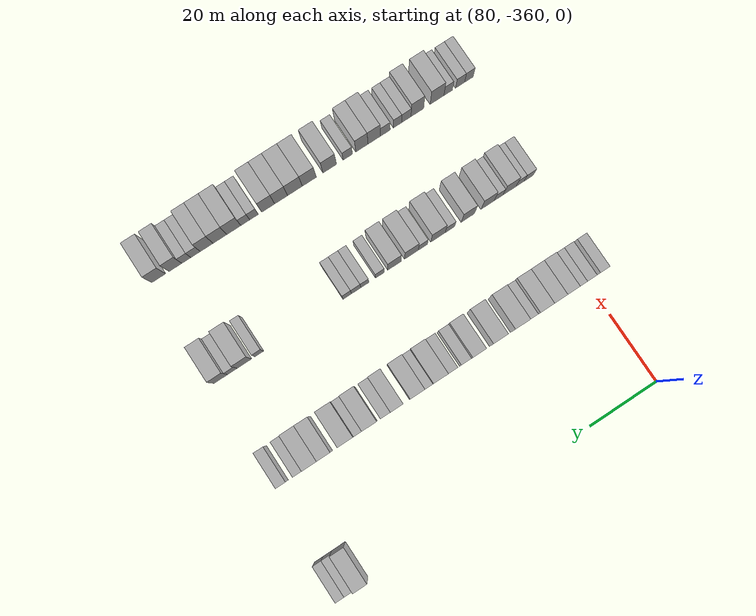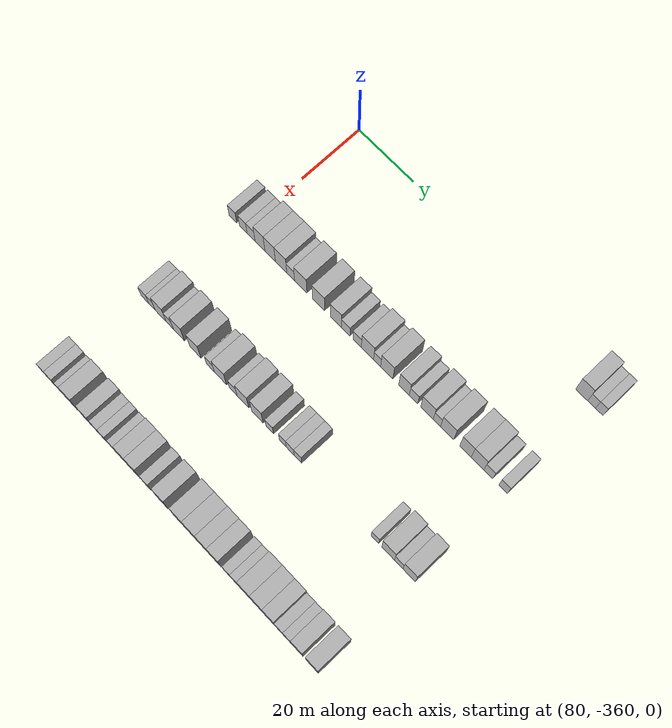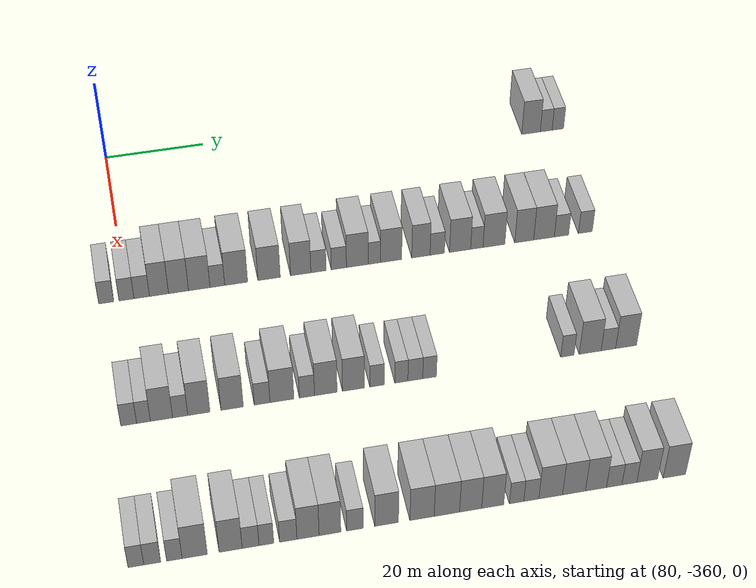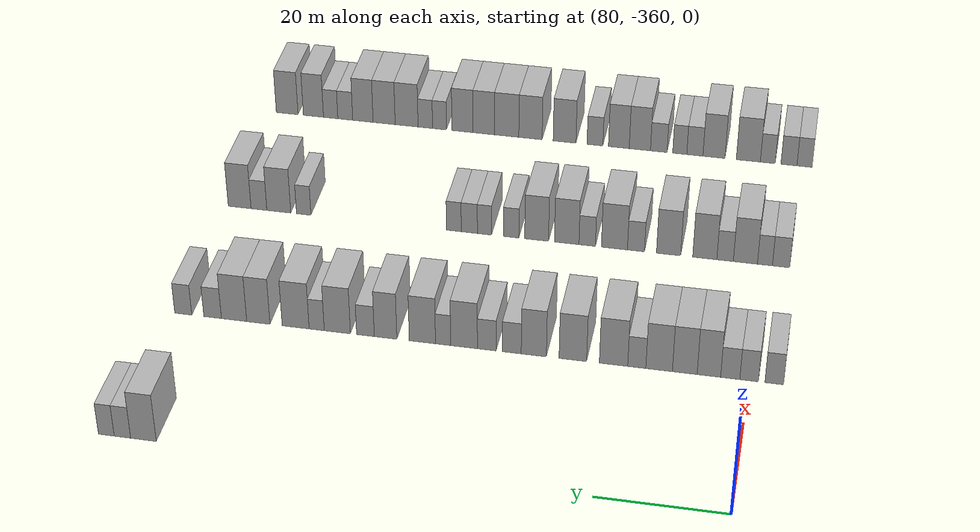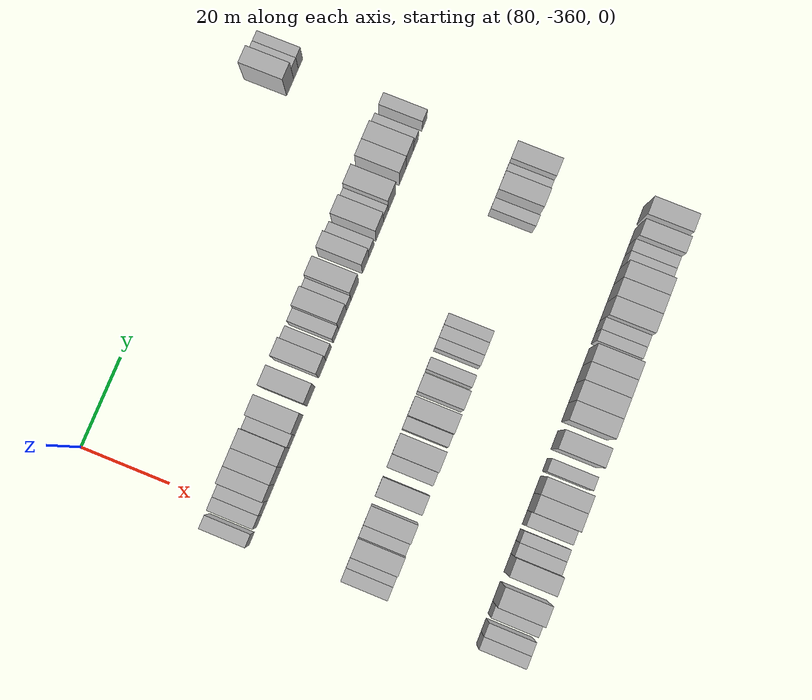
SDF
<sdf version="1.6">
 <world name="default">
  <model name="building_501">
   <static>1</static>
   <pose>85.0000 -272.5114 0 0.000000 0.000000 0.000000</pose>
   <link name="link">
    <pose>0 0 4.50 0 0 0</pose>
    <collision name="collision"><geometry><box><size>10.0000 3.9751 9.0000</size></box></geometry></collision>
    <visual name="visual">
     <cast_shadows>0</cast_shadows>
     <geometry><box><size>10.0000 3.9751 9.0000</size></box></geometry>
     <material>
      <script>
       <uri>model://HANNAS_wall/materials/scripts</uri>
       <uri>model://HANNAS_wall/materials/textures</uri>
       <name>vrc/HANNAS_wall</name>
      </script>
     </material>
    </visual>
   </link>
  </model>
  <model name="building_502">
   <static>1</static>
   <pose>85.0000 -269.2441 0 0.000000 0.000000 0.000000</pose>
   <link name="link">
    <pose>0 0 3.00 0 0 0</pose>
    <collision name="collision"><geometry><box><size>10.0000 2.5595 6.0000</size></box></geometry></collision>
    <visual name="visual">
     <cast_shadows>0</cast_shadows>
     <geometry><box><size>10.0000 2.5595 6.0000</size></box></geometry>
     <material>
      <script>
       <uri>model://HANNAS_wall/materials/scripts</uri>
       <uri>model://HANNAS_wall/materials/textures</uri>
       <name>vrc/HANNAS_wall</name>
      </script>
     </material>
    </visual>
   </link>
  </model>
  <model name="building_503">
   <static>1</static>
   <pose>85.0000 -266.7356 0 0.000000 0.000000 0.000000</pose>
   <link name="link">
    <pose>0 0 3.00 0 0 0</pose>
    <collision name="collision"><geometry><box><size>10.0000 2.4575 6.0000</size></box></geometry></collision>
    <visual name="visual">
     <cast_shadows>0</cast_shadows>
     <geometry><box><size>10.0000 2.4575 6.0000</size></box></geometry>
     <material>
      <script>
       <uri>model://HANNAS_wall/materials/scripts</uri>
       <uri>model://HANNAS_wall/materials/textures</uri>
       <name>vrc/HANNAS_wall</name>
      </script>
     </material>
    </visual>
   </link>
  </model>
  <model name="building_700">
   <static>1</static>
   <pose>115.0000 -363.8164 0 0.000000 0.000000 0.000000</pose>
   <link name="link">
    <pose>0 0 3.00 0 0 0</pose>
    <collision name="collision"><geometry><box><size>10.0000 2.8569 6.0000</size></box></geometry></collision>
    <visual name="visual">
     <cast_shadows>0</cast_shadows>
     <geometry><box><size>10.0000 2.8569 6.0000</size></box></geometry>
     <material>
      <script>
       <uri>model://HANNAS_wall/materials/scripts</uri>
       <uri>model://HANNAS_wall/materials/textures</uri>
       <name>vrc/HANNAS_wall</name>
      </script>
     </material>
    </visual>
   </link>
  </model>
  <model name="building_701">
   <static>1</static>
   <pose>115.0000 -359.9608 0 0.000000 0.000000 0.000000</pose>
   <link name="link">
    <pose>0 0 3.00 0 0 0</pose>
    <collision name="collision"><geometry><box><size>10.0000 2.8542 6.0000</size></box></geometry></collision>
    <visual name="visual">
     <cast_shadows>0</cast_shadows>
     <geometry><box><size>10.0000 2.8542 6.0000</size></box></geometry>
     <material>
      <script>
       <uri>model://HANNAS_wall/materials/scripts</uri>
       <uri>model://HANNAS_wall/materials/textures</uri>
       <name>vrc/HANNAS_wall</name>
      </script>
     </material>
    </visual>
   </link>
  </model>
  <model name="building_702">
   <static>1</static>
   <pose>115.0000 -357.0542 0 0.000000 0.000000 0.000000</pose>
   <link name="link">
    <pose>0 0 3.00 0 0 0</pose>
    <collision name="collision"><geometry><box><size>10.0000 2.9592 6.0000</size></box></geometry></collision>
    <visual name="visual">
     <cast_shadows>0</cast_shadows>
     <geometry><box><size>10.0000 2.9592 6.0000</size></box></geometry>
     <material>
      <script>
       <uri>model://HANNAS_wall/materials/scripts</uri>
       <uri>model://HANNAS_wall/materials/textures</uri>
       <name>vrc/HANNAS_wall</name>
      </script>
     </material>
    </visual>
   </link>
  </model>
  <model name="building_703">
   <static>1</static>
   <pose>115.0000 -353.7580 0 0.000000 0.000000 0.000000</pose>
   <link name="link">
    <pose>0 0 4.50 0 0 0</pose>
    <collision name="collision"><geometry><box><size>10.0000 3.6331 9.0000</size></box></geometry></collision>
    <visual name="visual">
     <cast_shadows>0</cast_shadows>
     <geometry><box><size>10.0000 3.6331 9.0000</size></box></geometry>
     <material>
      <script>
       <uri>model://HANNAS_wall/materials/scripts</uri>
       <uri>model://HANNAS_wall/materials/textures</uri>
       <name>vrc/HANNAS_wall</name>
      </script>
     </material>
    </visual>
   </link>
  </model>
  <model name="building_704">
   <static>1</static>
   <pose>115.0000 -350.0227 0 0.000000 0.000000 0.000000</pose>
   <link name="link">
    <pose>0 0 4.50 0 0 0</pose>
    <collision name="collision"><geometry><box><size>10.0000 3.8375 9.0000</size></box></geometry></collision>
    <visual name="visual">
     <cast_shadows>0</cast_shadows>
     <geometry><box><size>10.0000 3.8375 9.0000</size></box></geometry>
     <material>
      <script>
       <uri>model://HANNAS_wall/materials/scripts</uri>
       <uri>model://HANNAS_wall/materials/textures</uri>
       <name>vrc/HANNAS_wall</name>
      </script>
     </material>
    </visual>
   </link>
  </model>
  <model name="building_705">
   <static>1</static>
   <pose>115.0000 -346.0353 0 0.000000 0.000000 0.000000</pose>
   <link name="link">
    <pose>0 0 4.50 0 0 0</pose>
    <collision name="collision"><geometry><box><size>10.0000 4.1374 9.0000</size></box></geometry></collision>
    <visual name="visual">
     <cast_shadows>0</cast_shadows>
     <geometry><box><size>10.0000 4.1374 9.0000</size></box></geometry>
     <material>
      <script>
       <uri>model://HANNAS_wall/materials/scripts</uri>
       <uri>model://HANNAS_wall/materials/textures</uri>
       <name>vrc/HANNAS_wall</name>
      </script>
     </material>
    </visual>
   </link>
  </model>
  <model name="building_706">
   <static>1</static>
   <pose>115.0000 -342.5532 0 0.000000 0.000000 0.000000</pose>
   <link name="link">
    <pose>0 0 3.00 0 0 0</pose>
    <collision name="collision"><geometry><box><size>10.0000 2.8268 6.0000</size></box></geometry></collision>
    <visual name="visual">
     <cast_shadows>0</cast_shadows>
     <geometry><box><size>10.0000 2.8268 6.0000</size></box></geometry>
     <material>
      <script>
       <uri>model://HANNAS_wall/materials/scripts</uri>
       <uri>model://HANNAS_wall/materials/textures</uri>
       <name>vrc/HANNAS_wall</name>
      </script>
     </material>
    </visual>
   </link>
  </model>
  <model name="building_707">
   <static>1</static>
   <pose>115.0000 -338.9180 0 0.000000 0.000000 0.000000</pose>
   <link name="link">
    <pose>0 0 4.50 0 0 0</pose>
    <collision name="collision"><geometry><box><size>10.0000 4.4434 9.0000</size></box></geometry></collision>
    <visual name="visual">
     <cast_shadows>0</cast_shadows>
     <geometry><box><size>10.0000 4.4434 9.0000</size></box></geometry>
     <material>
      <script>
       <uri>model://HANNAS_wall/materials/scripts</uri>
       <uri>model://HANNAS_wall/materials/textures</uri>
       <name>vrc/HANNAS_wall</name>
      </script>
     </material>
    </visual>
   </link>
  </model>
  <model name="building_708">
   <static>1</static>
   <pose>115.0000 -332.5225 0 0.000000 0.000000 0.000000</pose>
   <link name="link">
    <pose>0 0 4.50 0 0 0</pose>
    <collision name="collision"><geometry><box><size>10.0000 4.3476 9.0000</size></box></geometry></collision>
    <visual name="visual">
     <cast_shadows>0</cast_shadows>
     <geometry><box><size>10.0000 4.3476 9.0000</size></box></geometry>
     <material>
      <script>
       <uri>model://HANNAS_wall/materials/scripts</uri>
       <uri>model://HANNAS_wall/materials/textures</uri>
       <name>vrc/HANNAS_wall</name>
      </script>
     </material>
    </visual>
   </link>
  </model>
  <model name="building_709">
   <static>1</static>
   <pose>115.0000 -326.3558 0 0.000000 0.000000 0.000000</pose>
   <link name="link">
    <pose>0 0 4.50 0 0 0</pose>
    <collision name="collision"><geometry><box><size>10.0000 3.9858 9.0000</size></box></geometry></collision>
    <visual name="visual">
     <cast_shadows>0</cast_shadows>
     <geometry><box><size>10.0000 3.9858 9.0000</size></box></geometry>
     <material>
      <script>
       <uri>model://HANNAS_wall/materials/scripts</uri>
       <uri>model://HANNAS_wall/materials/textures</uri>
       <name>vrc/HANNAS_wall</name>
      </script>
     </material>
    </visual>
   </link>
  </model>
  <model name="building_710">
   <static>1</static>
   <pose>115.0000 -322.8643 0 0.000000 0.000000 0.000000</pose>
   <link name="link">
    <pose>0 0 3.00 0 0 0</pose>
    <collision name="collision"><geometry><box><size>10.0000 2.9972 6.0000</size></box></geometry></collision>
    <visual name="visual">
     <cast_shadows>0</cast_shadows>
     <geometry><box><size>10.0000 2.9972 6.0000</size></box></geometry>
     <material>
      <script>
       <uri>model://HANNAS_wall/materials/scripts</uri>
       <uri>model://HANNAS_wall/materials/textures</uri>
       <name>vrc/HANNAS_wall</name>
      </script>
     </material>
    </visual>
   </link>
  </model>
  <model name="building_711">
   <static>1</static>
   <pose>115.0000 -318.8786 0 0.000000 0.000000 0.000000</pose>
   <link name="link">
    <pose>0 0 3.00 0 0 0</pose>
    <collision name="collision"><geometry><box><size>10.0000 2.9743 6.0000</size></box></geometry></collision>
    <visual name="visual">
     <cast_shadows>0</cast_shadows>
     <geometry><box><size>10.0000 2.9743 6.0000</size></box></geometry>
     <material>
      <script>
       <uri>model://HANNAS_wall/materials/scripts</uri>
       <uri>model://HANNAS_wall/materials/textures</uri>
       <name>vrc/HANNAS_wall</name>
      </script>
     </material>
    </visual>
   </link>
  </model>
  <model name="building_712">
   <static>1</static>
   <pose>115.0000 -315.2527 0 0.000000 0.000000 0.000000</pose>
   <link name="link">
    <pose>0 0 4.50 0 0 0</pose>
    <collision name="collision"><geometry><box><size>10.0000 4.2775 9.0000</size></box></geometry></collision>
    <visual name="visual">
     <cast_shadows>0</cast_shadows>
     <geometry><box><size>10.0000 4.2775 9.0000</size></box></geometry>
     <material>
      <script>
       <uri>model://HANNAS_wall/materials/scripts</uri>
       <uri>model://HANNAS_wall/materials/textures</uri>
       <name>vrc/HANNAS_wall</name>
      </script>
     </material>
    </visual>
   </link>
  </model>
  <model name="building_713">
   <static>1</static>
   <pose>115.0000 -311.8958 0 0.000000 0.000000 0.000000</pose>
   <link name="link">
    <pose>0 0 3.00 0 0 0</pose>
    <collision name="collision"><geometry><box><size>10.0000 2.4363 6.0000</size></box></geometry></collision>
    <visual name="visual">
     <cast_shadows>0</cast_shadows>
     <geometry><box><size>10.0000 2.4363 6.0000</size></box></geometry>
     <material>
      <script>
       <uri>model://HANNAS_wall/materials/scripts</uri>
       <uri>model://HANNAS_wall/materials/textures</uri>
       <name>vrc/HANNAS_wall</name>
      </script>
     </material>
    </visual>
   </link>
  </model>
  <model name="building_714">
   <static>1</static>
   <pose>115.0000 -308.5693 0 0.000000 0.000000 0.000000</pose>
   <link name="link">
    <pose>0 0 4.50 0 0 0</pose>
    <collision name="collision"><geometry><box><size>10.0000 4.2165 9.0000</size></box></geometry></collision>
    <visual name="visual">
     <cast_shadows>0</cast_shadows>
     <geometry><box><size>10.0000 4.2165 9.0000</size></box></geometry>
     <material>
      <script>
       <uri>model://HANNAS_wall/materials/scripts</uri>
       <uri>model://HANNAS_wall/materials/textures</uri>
       <name>vrc/HANNAS_wall</name>
      </script>
     </material>
    </visual>
   </link>
  </model>
  <model name="building_715">
   <static>1</static>
   <pose>115.0000 -302.6362 0 0.000000 0.000000 0.000000</pose>
   <link name="link">
    <pose>0 0 4.50 0 0 0</pose>
    <collision name="collision"><geometry><box><size>10.0000 3.6497 9.0000</size></box></geometry></collision>
    <visual name="visual">
     <cast_shadows>0</cast_shadows>
     <geometry><box><size>10.0000 3.6497 9.0000</size></box></geometry>
     <material>
      <script>
       <uri>model://HANNAS_wall/materials/scripts</uri>
       <uri>model://HANNAS_wall/materials/textures</uri>
       <name>vrc/HANNAS_wall</name>
      </script>
     </material>
    </visual>
   </link>
  </model>
  <model name="building_716">
   <static>1</static>
   <pose>115.0000 -299.3735 0 0.000000 0.000000 0.000000</pose>
   <link name="link">
    <pose>0 0 3.00 0 0 0</pose>
    <collision name="collision"><geometry><box><size>10.0000 2.8758 6.0000</size></box></geometry></collision>
    <visual name="visual">
     <cast_shadows>0</cast_shadows>
     <geometry><box><size>10.0000 2.8758 6.0000</size></box></geometry>
     <material>
      <script>
       <uri>model://HANNAS_wall/materials/scripts</uri>
       <uri>model://HANNAS_wall/materials/textures</uri>
       <name>vrc/HANNAS_wall</name>
      </script>
     </material>
    </visual>
   </link>
  </model>
  <model name="building_717">
   <static>1</static>
   <pose>115.0000 -294.8065 0 0.000000 0.000000 0.000000</pose>
   <link name="link">
    <pose>0 0 4.50 0 0 0</pose>
    <collision name="collision"><geometry><box><size>10.0000 4.2581 9.0000</size></box></geometry></collision>
    <visual name="visual">
     <cast_shadows>0</cast_shadows>
     <geometry><box><size>10.0000 4.2581 9.0000</size></box></geometry>
     <material>
      <script>
       <uri>model://HANNAS_wall/materials/scripts</uri>
       <uri>model://HANNAS_wall/materials/textures</uri>
       <name>vrc/HANNAS_wall</name>
      </script>
     </material>
    </visual>
   </link>
  </model>
  <model name="building_718">
   <static>1</static>
   <pose>115.0000 -291.4422 0 0.000000 0.000000 0.000000</pose>
   <link name="link">
    <pose>0 0 3.00 0 0 0</pose>
    <collision name="collision"><geometry><box><size>10.0000 2.4704 6.0000</size></box></geometry></collision>
    <visual name="visual">
     <cast_shadows>0</cast_shadows>
     <geometry><box><size>10.0000 2.4704 6.0000</size></box></geometry>
     <material>
      <script>
       <uri>model://HANNAS_wall/materials/scripts</uri>
       <uri>model://HANNAS_wall/materials/textures</uri>
       <name>vrc/HANNAS_wall</name>
      </script>
     </material>
    </visual>
   </link>
  </model>
  <model name="building_719">
   <static>1</static>
   <pose>115.0000 -287.9984 0 0.000000 0.000000 0.000000</pose>
   <link name="link">
    <pose>0 0 4.50 0 0 0</pose>
    <collision name="collision"><geometry><box><size>10.0000 4.4172 9.0000</size></box></geometry></collision>
    <visual name="visual">
     <cast_shadows>0</cast_shadows>
     <geometry><box><size>10.0000 4.4172 9.0000</size></box></geometry>
     <material>
      <script>
       <uri>model://HANNAS_wall/materials/scripts</uri>
       <uri>model://HANNAS_wall/materials/textures</uri>
       <name>vrc/HANNAS_wall</name>
      </script>
     </material>
    </visual>
   </link>
  </model>
  <model name="building_720">
   <static>1</static>
   <pose>115.0000 -281.8726 0 0.000000 0.000000 0.000000</pose>
   <link name="link">
    <pose>0 0 4.50 0 0 0</pose>
    <collision name="collision"><geometry><box><size>10.0000 3.8344 9.0000</size></box></geometry></collision>
    <visual name="visual">
     <cast_shadows>0</cast_shadows>
     <geometry><box><size>10.0000 3.8344 9.0000</size></box></geometry>
     <material>
      <script>
       <uri>model://HANNAS_wall/materials/scripts</uri>
       <uri>model://HANNAS_wall/materials/textures</uri>
       <name>vrc/HANNAS_wall</name>
      </script>
     </material>
    </visual>
   </link>
  </model>
  <model name="building_721">
   <static>1</static>
   <pose>115.0000 -277.8661 0 0.000000 0.000000 0.000000</pose>
   <link name="link">
    <pose>0 0 4.50 0 0 0</pose>
    <collision name="collision"><geometry><box><size>10.0000 4.1784 9.0000</size></box></geometry></collision>
    <visual name="visual">
     <cast_shadows>0</cast_shadows>
     <geometry><box><size>10.0000 4.1784 9.0000</size></box></geometry>
     <material>
      <script>
       <uri>model://HANNAS_wall/materials/scripts</uri>
       <uri>model://HANNAS_wall/materials/textures</uri>
       <name>vrc/HANNAS_wall</name>
      </script>
     </material>
    </visual>
   </link>
  </model>
  <model name="building_722">
   <static>1</static>
   <pose>115.0000 -274.3183 0 0.000000 0.000000 0.000000</pose>
   <link name="link">
    <pose>0 0 3.00 0 0 0</pose>
    <collision name="collision"><geometry><box><size>10.0000 2.9173 6.0000</size></box></geometry></collision>
    <visual name="visual">
     <cast_shadows>0</cast_shadows>
     <geometry><box><size>10.0000 2.9173 6.0000</size></box></geometry>
     <material>
      <script>
       <uri>model://HANNAS_wall/materials/scripts</uri>
       <uri>model://HANNAS_wall/materials/textures</uri>
       <name>vrc/HANNAS_wall</name>
      </script>
     </material>
    </visual>
   </link>
  </model>
  <model name="building_723">
   <static>1</static>
   <pose>115.0000 -269.4431 0 0.000000 0.000000 0.000000</pose>
   <link name="link">
    <pose>0 0 3.00 0 0 0</pose>
    <collision name="collision"><geometry><box><size>10.0000 2.8330 6.0000</size></box></geometry></collision>
    <visual name="visual">
     <cast_shadows>0</cast_shadows>
     <geometry><box><size>10.0000 2.8330 6.0000</size></box></geometry>
     <material>
      <script>
       <uri>model://HANNAS_wall/materials/scripts</uri>
       <uri>model://HANNAS_wall/materials/textures</uri>
       <name>vrc/HANNAS_wall</name>
      </script>
     </material>
    </visual>
   </link>
  </model>
  <model name="building_928">
   <static>1</static>
   <pose>145.0000 -362.6678 0 0.000000 0.000000 0.000000</pose>
   <link name="link">
    <pose>0 0 3.00 0 0 0</pose>
    <collision name="collision"><geometry><box><size>10.0000 2.8432 6.0000</size></box></geometry></collision>
    <visual name="visual">
     <cast_shadows>0</cast_shadows>
     <geometry><box><size>10.0000 2.8432 6.0000</size></box></geometry>
     <material>
      <script>
       <uri>model://HANNAS_wall/materials/scripts</uri>
       <uri>model://HANNAS_wall/materials/textures</uri>
       <name>vrc/HANNAS_wall</name>
      </script>
     </material>
    </visual>
   </link>
  </model>
  <model name="building_929">
   <static>1</static>
   <pose>145.0000 -360.0122 0 0.000000 0.000000 0.000000</pose>
   <link name="link">
    <pose>0 0 3.00 0 0 0</pose>
    <collision name="collision"><geometry><box><size>10.0000 2.4680 6.0000</size></box></geometry></collision>
    <visual name="visual">
     <cast_shadows>0</cast_shadows>
     <geometry><box><size>10.0000 2.4680 6.0000</size></box></geometry>
     <material>
      <script>
       <uri>model://HANNAS_wall/materials/scripts</uri>
       <uri>model://HANNAS_wall/materials/textures</uri>
       <name>vrc/HANNAS_wall</name>
      </script>
     </material>
    </visual>
   </link>
  </model>
  <model name="building_930">
   <static>1</static>
   <pose>145.0000 -356.7858 0 0.000000 0.000000 0.000000</pose>
   <link name="link">
    <pose>0 0 4.50 0 0 0</pose>
    <collision name="collision"><geometry><box><size>10.0000 3.9849 9.0000</size></box></geometry></collision>
    <visual name="visual">
     <cast_shadows>0</cast_shadows>
     <geometry><box><size>10.0000 3.9849 9.0000</size></box></geometry>
     <material>
      <script>
       <uri>model://HANNAS_wall/materials/scripts</uri>
       <uri>model://HANNAS_wall/materials/textures</uri>
       <name>vrc/HANNAS_wall</name>
      </script>
     </material>
    </visual>
   </link>
  </model>
  <model name="building_931">
   <static>1</static>
   <pose>145.0000 -353.4271 0 0.000000 0.000000 0.000000</pose>
   <link name="link">
    <pose>0 0 3.00 0 0 0</pose>
    <collision name="collision"><geometry><box><size>10.0000 2.7325 6.0000</size></box></geometry></collision>
    <visual name="visual">
     <cast_shadows>0</cast_shadows>
     <geometry><box><size>10.0000 2.7325 6.0000</size></box></geometry>
     <material>
      <script>
       <uri>model://HANNAS_wall/materials/scripts</uri>
       <uri>model://HANNAS_wall/materials/textures</uri>
       <name>vrc/HANNAS_wall</name>
      </script>
     </material>
    </visual>
   </link>
  </model>
  <model name="building_932">
   <static>1</static>
   <pose>145.0000 -350.0572 0 0.000000 0.000000 0.000000</pose>
   <link name="link">
    <pose>0 0 4.50 0 0 0</pose>
    <collision name="collision"><geometry><box><size>10.0000 4.0073 9.0000</size></box></geometry></collision>
    <visual name="visual">
     <cast_shadows>0</cast_shadows>
     <geometry><box><size>10.0000 4.0073 9.0000</size></box></geometry>
     <material>
      <script>
       <uri>model://HANNAS_wall/materials/scripts</uri>
       <uri>model://HANNAS_wall/materials/textures</uri>
       <name>vrc/HANNAS_wall</name>
      </script>
     </material>
    </visual>
   </link>
  </model>
  <model name="building_933">
   <static>1</static>
   <pose>145.0000 -344.0308 0 0.000000 0.000000 0.000000</pose>
   <link name="link">
    <pose>0 0 4.50 0 0 0</pose>
    <collision name="collision"><geometry><box><size>10.0000 4.0456 9.0000</size></box></geometry></collision>
    <visual name="visual">
     <cast_shadows>0</cast_shadows>
     <geometry><box><size>10.0000 4.0456 9.0000</size></box></geometry>
     <material>
      <script>
       <uri>model://HANNAS_wall/materials/scripts</uri>
       <uri>model://HANNAS_wall/materials/textures</uri>
       <name>vrc/HANNAS_wall</name>
      </script>
     </material>
    </visual>
   </link>
  </model>
  <model name="building_934">
   <static>1</static>
   <pose>145.0000 -338.5738 0 0.000000 0.000000 0.000000</pose>
   <link name="link">
    <pose>0 0 3.00 0 0 0</pose>
    <collision name="collision"><geometry><box><size>10.0000 2.8684 6.0000</size></box></geometry></collision>
    <visual name="visual">
     <cast_shadows>0</cast_shadows>
     <geometry><box><size>10.0000 2.8684 6.0000</size></box></geometry>
     <material>
      <script>
       <uri>model://HANNAS_wall/materials/scripts</uri>
       <uri>model://HANNAS_wall/materials/textures</uri>
       <name>vrc/HANNAS_wall</name>
      </script>
     </material>
    </visual>
   </link>
  </model>
  <model name="building_935">
   <static>1</static>
   <pose>145.0000 -334.9520 0 0.000000 0.000000 0.000000</pose>
   <link name="link">
    <pose>0 0 4.50 0 0 0</pose>
    <collision name="collision"><geometry><box><size>10.0000 4.3752 9.0000</size></box></geometry></collision>
    <visual name="visual">
     <cast_shadows>0</cast_shadows>
     <geometry><box><size>10.0000 4.3752 9.0000</size></box></geometry>
     <material>
      <script>
       <uri>model://HANNAS_wall/materials/scripts</uri>
       <uri>model://HANNAS_wall/materials/textures</uri>
       <name>vrc/HANNAS_wall</name>
      </script>
     </material>
    </visual>
   </link>
  </model>
  <model name="building_936">
   <static>1</static>
   <pose>145.0000 -330.3703 0 0.000000 0.000000 0.000000</pose>
   <link name="link">
    <pose>0 0 3.00 0 0 0</pose>
    <collision name="collision"><geometry><box><size>10.0000 2.7881 6.0000</size></box></geometry></collision>
    <visual name="visual">
     <cast_shadows>0</cast_shadows>
     <geometry><box><size>10.0000 2.7881 6.0000</size></box></geometry>
     <material>
      <script>
       <uri>model://HANNAS_wall/materials/scripts</uri>
       <uri>model://HANNAS_wall/materials/textures</uri>
       <name>vrc/HANNAS_wall</name>
      </script>
     </material>
    </visual>
   </link>
  </model>
  <model name="building_937">
   <static>1</static>
   <pose>145.0000 -326.9026 0 0.000000 0.000000 0.000000</pose>
   <link name="link">
    <pose>0 0 4.50 0 0 0</pose>
    <collision name="collision"><geometry><box><size>10.0000 4.1473 9.0000</size></box></geometry></collision>
    <visual name="visual">
     <cast_shadows>0</cast_shadows>
     <geometry><box><size>10.0000 4.1473 9.0000</size></box></geometry>
     <material>
      <script>
       <uri>model://HANNAS_wall/materials/scripts</uri>
       <uri>model://HANNAS_wall/materials/textures</uri>
       <name>vrc/HANNAS_wall</name>
      </script>
     </material>
    </visual>
   </link>
  </model>
  <model name="building_938">
   <static>1</static>
   <pose>145.0000 -321.8026 0 0.000000 0.000000 0.000000</pose>
   <link name="link">
    <pose>0 0 4.50 0 0 0</pose>
    <collision name="collision"><geometry><box><size>10.0000 4.0528 9.0000</size></box></geometry></collision>
    <visual name="visual">
     <cast_shadows>0</cast_shadows>
     <geometry><box><size>10.0000 4.0528 9.0000</size></box></geometry>
     <material>
      <script>
       <uri>model://HANNAS_wall/materials/scripts</uri>
       <uri>model://HANNAS_wall/materials/textures</uri>
       <name>vrc/HANNAS_wall</name>
      </script>
     </material>
    </visual>
   </link>
  </model>
  <model name="building_939">
   <static>1</static>
   <pose>145.0000 -317.4437 0 0.000000 0.000000 0.000000</pose>
   <link name="link">
    <pose>0 0 3.00 0 0 0</pose>
    <collision name="collision"><geometry><box><size>10.0000 2.6650 6.0000</size></box></geometry></collision>
    <visual name="visual">
     <cast_shadows>0</cast_shadows>
     <geometry><box><size>10.0000 2.6650 6.0000</size></box></geometry>
     <material>
      <script>
       <uri>model://HANNAS_wall/materials/scripts</uri>
       <uri>model://HANNAS_wall/materials/textures</uri>
       <name>vrc/HANNAS_wall</name>
      </script>
     </material>
    </visual>
   </link>
  </model>
  <model name="building_940">
   <static>1</static>
   <pose>145.0000 -312.9005 0 0.000000 0.000000 0.000000</pose>
   <link name="link">
    <pose>0 0 3.00 0 0 0</pose>
    <collision name="collision"><geometry><box><size>10.0000 2.4215 6.0000</size></box></geometry></collision>
    <visual name="visual">
     <cast_shadows>0</cast_shadows>
     <geometry><box><size>10.0000 2.4215 6.0000</size></box></geometry>
     <material>
      <script>
       <uri>model://HANNAS_wall/materials/scripts</uri>
       <uri>model://HANNAS_wall/materials/textures</uri>
       <name>vrc/HANNAS_wall</name>
      </script>
     </material>
    </visual>
   </link>
  </model>
  <model name="building_941">
   <static>1</static>
   <pose>145.0000 -310.3034 0 0.000000 0.000000 0.000000</pose>
   <link name="link">
    <pose>0 0 3.00 0 0 0</pose>
    <collision name="collision"><geometry><box><size>10.0000 2.7726 6.0000</size></box></geometry></collision>
    <visual name="visual">
     <cast_shadows>0</cast_shadows>
     <geometry><box><size>10.0000 2.7726 6.0000</size></box></geometry>
     <material>
      <script>
       <uri>model://HANNAS_wall/materials/scripts</uri>
       <uri>model://HANNAS_wall/materials/textures</uri>
       <name>vrc/HANNAS_wall</name>
      </script>
     </material>
    </visual>
   </link>
  </model>
  <model name="building_942">
   <static>1</static>
   <pose>145.0000 -307.6429 0 0.000000 0.000000 0.000000</pose>
   <link name="link">
    <pose>0 0 3.00 0 0 0</pose>
    <collision name="collision"><geometry><box><size>10.0000 2.5485 6.0000</size></box></geometry></collision>
    <visual name="visual">
     <cast_shadows>0</cast_shadows>
     <geometry><box><size>10.0000 2.5485 6.0000</size></box></geometry>
     <material>
      <script>
       <uri>model://HANNAS_wall/materials/scripts</uri>
       <uri>model://HANNAS_wall/materials/textures</uri>
       <name>vrc/HANNAS_wall</name>
      </script>
     </material>
    </visual>
   </link>
  </model>
  <model name="building_943">
   <static>1</static>
   <pose>145.0000 -281.5471 0 0.000000 0.000000 0.000000</pose>
   <link name="link">
    <pose>0 0 3.00 0 0 0</pose>
    <collision name="collision"><geometry><box><size>10.0000 2.5477 6.0000</size></box></geometry></collision>
    <visual name="visual">
     <cast_shadows>0</cast_shadows>
     <geometry><box><size>10.0000 2.5477 6.0000</size></box></geometry>
     <material>
      <script>
       <uri>model://HANNAS_wall/materials/scripts</uri>
       <uri>model://HANNAS_wall/materials/textures</uri>
       <name>vrc/HANNAS_wall</name>
      </script>
     </material>
    </visual>
   </link>
  </model>
  <model name="building_944">
   <static>1</static>
   <pose>145.0000 -277.1665 0 0.000000 0.000000 0.000000</pose>
   <link name="link">
    <pose>0 0 4.50 0 0 0</pose>
    <collision name="collision"><geometry><box><size>10.0000 4.2136 9.0000</size></box></geometry></collision>
    <visual name="visual">
     <cast_shadows>0</cast_shadows>
     <geometry><box><size>10.0000 4.2136 9.0000</size></box></geometry>
     <material>
      <script>
       <uri>model://HANNAS_wall/materials/scripts</uri>
       <uri>model://HANNAS_wall/materials/textures</uri>
       <name>vrc/HANNAS_wall</name>
      </script>
     </material>
    </visual>
   </link>
  </model>
  <model name="building_945">
   <static>1</static>
   <pose>145.0000 -273.6630 0 0.000000 0.000000 0.000000</pose>
   <link name="link">
    <pose>0 0 3.00 0 0 0</pose>
    <collision name="collision"><geometry><box><size>10.0000 2.7933 6.0000</size></box></geometry></collision>
    <visual name="visual">
     <cast_shadows>0</cast_shadows>
     <geometry><box><size>10.0000 2.7933 6.0000</size></box></geometry>
     <material>
      <script>
       <uri>model://HANNAS_wall/materials/scripts</uri>
       <uri>model://HANNAS_wall/materials/textures</uri>
       <name>vrc/HANNAS_wall</name>
      </script>
     </material>
    </visual>
   </link>
  </model>
  <model name="building_946">
   <static>1</static>
   <pose>145.0000 -270.2484 0 0.000000 0.000000 0.000000</pose>
   <link name="link">
    <pose>0 0 4.50 0 0 0</pose>
    <collision name="collision"><geometry><box><size>10.0000 4.0358 9.0000</size></box></geometry></collision>
    <visual name="visual">
     <cast_shadows>0</cast_shadows>
     <geometry><box><size>10.0000 4.0358 9.0000</size></box></geometry>
     <material>
      <script>
       <uri>model://HANNAS_wall/materials/scripts</uri>
       <uri>model://HANNAS_wall/materials/textures</uri>
       <name>vrc/HANNAS_wall</name>
      </script>
     </material>
    </visual>
   </link>
  </model>
  <model name="building_1148">
   <static>1</static>
   <pose>175.0000 -364.5819 0 0.000000 0.000000 0.000000</pose>
   <link name="link">
    <pose>0 0 3.00 0 0 0</pose>
    <collision name="collision"><geometry><box><size>10.0000 2.6478 6.0000</size></box></geometry></collision>
    <visual name="visual">
     <cast_shadows>0</cast_shadows>
     <geometry><box><size>10.0000 2.6478 6.0000</size></box></geometry>
     <material>
      <script>
       <uri>model://HANNAS_wall/materials/scripts</uri>
       <uri>model://HANNAS_wall/materials/textures</uri>
       <name>vrc/HANNAS_wall</name>
      </script>
     </material>
    </visual>
   </link>
  </model>
  <model name="building_1149">
   <static>1</static>
   <pose>175.0000 -361.8499 0 0.000000 0.000000 0.000000</pose>
   <link name="link">
    <pose>0 0 3.00 0 0 0</pose>
    <collision name="collision"><geometry><box><size>10.0000 2.8162 6.0000</size></box></geometry></collision>
    <visual name="visual">
     <cast_shadows>0</cast_shadows>
     <geometry><box><size>10.0000 2.8162 6.0000</size></box></geometry>
     <material>
      <script>
       <uri>model://HANNAS_wall/materials/scripts</uri>
       <uri>model://HANNAS_wall/materials/textures</uri>
       <name>vrc/HANNAS_wall</name>
      </script>
     </material>
    </visual>
   </link>
  </model>
  <model name="building_1150">
   <static>1</static>
   <pose>175.0000 -358.1332 0 0.000000 0.000000 0.000000</pose>
   <link name="link">
    <pose>0 0 3.00 0 0 0</pose>
    <collision name="collision"><geometry><box><size>10.0000 2.6171 6.0000</size></box></geometry></collision>
    <visual name="visual">
     <cast_shadows>0</cast_shadows>
     <geometry><box><size>10.0000 2.6171 6.0000</size></box></geometry>
     <material>
      <script>
       <uri>model://HANNAS_wall/materials/scripts</uri>
       <uri>model://HANNAS_wall/materials/textures</uri>
       <name>vrc/HANNAS_wall</name>
      </script>
     </material>
    </visual>
   </link>
  </model>
  <model name="building_1151">
   <static>1</static>
   <pose>175.0000 -354.7011 0 0.000000 0.000000 0.000000</pose>
   <link name="link">
    <pose>0 0 4.50 0 0 0</pose>
    <collision name="collision"><geometry><box><size>10.0000 4.2470 9.0000</size></box></geometry></collision>
    <visual name="visual">
     <cast_shadows>0</cast_shadows>
     <geometry><box><size>10.0000 4.2470 9.0000</size></box></geometry>
     <material>
      <script>
       <uri>model://HANNAS_wall/materials/scripts</uri>
       <uri>model://HANNAS_wall/materials/textures</uri>
       <name>vrc/HANNAS_wall</name>
      </script>
     </material>
    </visual>
   </link>
  </model>
  <model name="building_1152">
   <static>1</static>
   <pose>175.0000 -348.6256 0 0.000000 0.000000 0.000000</pose>
   <link name="link">
    <pose>0 0 4.50 0 0 0</pose>
    <collision name="collision"><geometry><box><size>10.0000 3.9039 9.0000</size></box></geometry></collision>
    <visual name="visual">
     <cast_shadows>0</cast_shadows>
     <geometry><box><size>10.0000 3.9039 9.0000</size></box></geometry>
     <material>
      <script>
       <uri>model://HANNAS_wall/materials/scripts</uri>
       <uri>model://HANNAS_wall/materials/textures</uri>
       <name>vrc/HANNAS_wall</name>
      </script>
     </material>
    </visual>
   </link>
  </model>
  <model name="building_1153">
   <static>1</static>
   <pose>175.0000 -345.2352 0 0.000000 0.000000 0.000000</pose>
   <link name="link">
    <pose>0 0 3.00 0 0 0</pose>
    <collision name="collision"><geometry><box><size>10.0000 2.8770 6.0000</size></box></geometry></collision>
    <visual name="visual">
     <cast_shadows>0</cast_shadows>
     <geometry><box><size>10.0000 2.8770 6.0000</size></box></geometry>
     <material>
      <script>
       <uri>model://HANNAS_wall/materials/scripts</uri>
       <uri>model://HANNAS_wall/materials/textures</uri>
       <name>vrc/HANNAS_wall</name>
      </script>
     </material>
    </visual>
   </link>
  </model>
  <model name="building_1154">
   <static>1</static>
   <pose>175.0000 -342.5434 0 0.000000 0.000000 0.000000</pose>
   <link name="link">
    <pose>0 0 3.00 0 0 0</pose>
    <collision name="collision"><geometry><box><size>10.0000 2.5066 6.0000</size></box></geometry></collision>
    <visual name="visual">
     <cast_shadows>0</cast_shadows>
     <geometry><box><size>10.0000 2.5066 6.0000</size></box></geometry>
     <material>
      <script>
       <uri>model://HANNAS_wall/materials/scripts</uri>
       <uri>model://HANNAS_wall/materials/textures</uri>
       <name>vrc/HANNAS_wall</name>
      </script>
     </material>
    </visual>
   </link>
  </model>
  <model name="building_1155">
   <static>1</static>
   <pose>175.0000 -338.8054 0 0.000000 0.000000 0.000000</pose>
   <link name="link">
    <pose>0 0 3.00 0 0 0</pose>
    <collision name="collision"><geometry><box><size>10.0000 2.9695 6.0000</size></box></geometry></collision>
    <visual name="visual">
     <cast_shadows>0</cast_shadows>
     <geometry><box><size>10.0000 2.9695 6.0000</size></box></geometry>
     <material>
      <script>
       <uri>model://HANNAS_wall/materials/scripts</uri>
       <uri>model://HANNAS_wall/materials/textures</uri>
       <name>vrc/HANNAS_wall</name>
      </script>
     </material>
    </visual>
   </link>
  </model>
  <model name="building_1156">
   <static>1</static>
   <pose>175.0000 -335.4173 0 0.000000 0.000000 0.000000</pose>
   <link name="link">
    <pose>0 0 4.50 0 0 0</pose>
    <collision name="collision"><geometry><box><size>10.0000 3.8068 9.0000</size></box></geometry></collision>
    <visual name="visual">
     <cast_shadows>0</cast_shadows>
     <geometry><box><size>10.0000 3.8068 9.0000</size></box></geometry>
     <material>
      <script>
       <uri>model://HANNAS_wall/materials/scripts</uri>
       <uri>model://HANNAS_wall/materials/textures</uri>
       <name>vrc/HANNAS_wall</name>
      </script>
     </material>
    </visual>
   </link>
  </model>
  <model name="building_1157">
   <static>1</static>
   <pose>175.0000 -331.6477 0 0.000000 0.000000 0.000000</pose>
   <link name="link">
    <pose>0 0 4.50 0 0 0</pose>
    <collision name="collision"><geometry><box><size>10.0000 3.7322 9.0000</size></box></geometry></collision>
    <visual name="visual">
     <cast_shadows>0</cast_shadows>
     <geometry><box><size>10.0000 3.7322 9.0000</size></box></geometry>
     <material>
      <script>
       <uri>model://HANNAS_wall/materials/scripts</uri>
       <uri>model://HANNAS_wall/materials/textures</uri>
       <name>vrc/HANNAS_wall</name>
      </script>
     </material>
    </visual>
   </link>
  </model>
  <model name="building_1158">
   <static>1</static>
   <pose>175.0000 -327.3530 0 0.000000 0.000000 0.000000</pose>
   <link name="link">
    <pose>0 0 3.00 0 0 0</pose>
    <collision name="collision"><geometry><box><size>10.0000 2.8572 6.0000</size></box></geometry></collision>
    <visual name="visual">
     <cast_shadows>0</cast_shadows>
     <geometry><box><size>10.0000 2.8572 6.0000</size></box></geometry>
     <material>
      <script>
       <uri>model://HANNAS_wall/materials/scripts</uri>
       <uri>model://HANNAS_wall/materials/textures</uri>
       <name>vrc/HANNAS_wall</name>
      </script>
     </material>
    </visual>
   </link>
  </model>
  <model name="building_1159">
   <static>1</static>
   <pose>175.0000 -321.8618 0 0.000000 0.000000 0.000000</pose>
   <link name="link">
    <pose>0 0 4.50 0 0 0</pose>
    <collision name="collision"><geometry><box><size>10.0000 4.1252 9.0000</size></box></geometry></collision>
    <visual name="visual">
     <cast_shadows>0</cast_shadows>
     <geometry><box><size>10.0000 4.1252 9.0000</size></box></geometry>
     <material>
      <script>
       <uri>model://HANNAS_wall/materials/scripts</uri>
       <uri>model://HANNAS_wall/materials/textures</uri>
       <name>vrc/HANNAS_wall</name>
      </script>
     </material>
    </visual>
   </link>
  </model>
  <model name="building_1160">
   <static>1</static>
   <pose>175.0000 -315.6779 0 0.000000 0.000000 0.000000</pose>
   <link name="link">
    <pose>0 0 4.50 0 0 0</pose>
    <collision name="collision"><geometry><box><size>10.0000 4.2427 9.0000</size></box></geometry></collision>
    <visual name="visual">
     <cast_shadows>0</cast_shadows>
     <geometry><box><size>10.0000 4.2427 9.0000</size></box></geometry>
     <material>
      <script>
       <uri>model://HANNAS_wall/materials/scripts</uri>
       <uri>model://HANNAS_wall/materials/textures</uri>
       <name>vrc/HANNAS_wall</name>
      </script>
     </material>
    </visual>
   </link>
  </model>
  <model name="building_1161">
   <static>1</static>
   <pose>175.0000 -311.3305 0 0.000000 0.000000 0.000000</pose>
   <link name="link">
    <pose>0 0 4.50 0 0 0</pose>
    <collision name="collision"><geometry><box><size>10.0000 4.4523 9.0000</size></box></geometry></collision>
    <visual name="visual">
     <cast_shadows>0</cast_shadows>
     <geometry><box><size>10.0000 4.4523 9.0000</size></box></geometry>
     <material>
      <script>
       <uri>model://HANNAS_wall/materials/scripts</uri>
       <uri>model://HANNAS_wall/materials/textures</uri>
       <name>vrc/HANNAS_wall</name>
      </script>
     </material>
    </visual>
   </link>
  </model>
  <model name="building_1162">
   <static>1</static>
   <pose>175.0000 -307.1555 0 0.000000 0.000000 0.000000</pose>
   <link name="link">
    <pose>0 0 4.50 0 0 0</pose>
    <collision name="collision"><geometry><box><size>10.0000 3.8977 9.0000</size></box></geometry></collision>
    <visual name="visual">
     <cast_shadows>0</cast_shadows>
     <geometry><box><size>10.0000 3.8977 9.0000</size></box></geometry>
     <material>
      <script>
       <uri>model://HANNAS_wall/materials/scripts</uri>
       <uri>model://HANNAS_wall/materials/textures</uri>
       <name>vrc/HANNAS_wall</name>
      </script>
     </material>
    </visual>
   </link>
  </model>
  <model name="building_1163">
   <static>1</static>
   <pose>175.0000 -303.2571 0 0.000000 0.000000 0.000000</pose>
   <link name="link">
    <pose>0 0 4.50 0 0 0</pose>
    <collision name="collision"><geometry><box><size>10.0000 3.8991 9.0000</size></box></geometry></collision>
    <visual name="visual">
     <cast_shadows>0</cast_shadows>
     <geometry><box><size>10.0000 3.8991 9.0000</size></box></geometry>
     <material>
      <script>
       <uri>model://HANNAS_wall/materials/scripts</uri>
       <uri>model://HANNAS_wall/materials/textures</uri>
       <name>vrc/HANNAS_wall</name>
      </script>
     </material>
    </visual>
   </link>
  </model>
  <model name="building_1164">
   <static>1</static>
   <pose>175.0000 -299.0278 0 0.000000 0.000000 0.000000</pose>
   <link name="link">
    <pose>0 0 3.00 0 0 0</pose>
    <collision name="collision"><geometry><box><size>10.0000 2.5593 6.0000</size></box></geometry></collision>
    <visual name="visual">
     <cast_shadows>0</cast_shadows>
     <geometry><box><size>10.0000 2.5593 6.0000</size></box></geometry>
     <material>
      <script>
       <uri>model://HANNAS_wall/materials/scripts</uri>
       <uri>model://HANNAS_wall/materials/textures</uri>
       <name>vrc/HANNAS_wall</name>
      </script>
     </material>
    </visual>
   </link>
  </model>
  <model name="building_1165">
   <static>1</static>
   <pose>175.0000 -296.4127 0 0.000000 0.000000 0.000000</pose>
   <link name="link">
    <pose>0 0 3.00 0 0 0</pose>
    <collision name="collision"><geometry><box><size>10.0000 2.6709 6.0000</size></box></geometry></collision>
    <visual name="visual">
     <cast_shadows>0</cast_shadows>
     <geometry><box><size>10.0000 2.6709 6.0000</size></box></geometry>
     <material>
      <script>
       <uri>model://HANNAS_wall/materials/scripts</uri>
       <uri>model://HANNAS_wall/materials/textures</uri>
       <name>vrc/HANNAS_wall</name>
      </script>
     </material>
    </visual>
   </link>
  </model>
  <model name="building_1166">
   <static>1</static>
   <pose>175.0000 -292.9614 0 0.000000 0.000000 0.000000</pose>
   <link name="link">
    <pose>0 0 4.50 0 0 0</pose>
    <collision name="collision"><geometry><box><size>10.0000 4.2316 9.0000</size></box></geometry></collision>
    <visual name="visual">
     <cast_shadows>0</cast_shadows>
     <geometry><box><size>10.0000 4.2316 9.0000</size></box></geometry>
     <material>
      <script>
       <uri>model://HANNAS_wall/materials/scripts</uri>
       <uri>model://HANNAS_wall/materials/textures</uri>
       <name>vrc/HANNAS_wall</name>
      </script>
     </material>
    </visual>
   </link>
  </model>
  <model name="building_1167">
   <static>1</static>
   <pose>175.0000 -288.7973 0 0.000000 0.000000 0.000000</pose>
   <link name="link">
    <pose>0 0 4.50 0 0 0</pose>
    <collision name="collision"><geometry><box><size>10.0000 4.0966 9.0000</size></box></geometry></collision>
    <visual name="visual">
     <cast_shadows>0</cast_shadows>
     <geometry><box><size>10.0000 4.0966 9.0000</size></box></geometry>
     <material>
      <script>
       <uri>model://HANNAS_wall/materials/scripts</uri>
       <uri>model://HANNAS_wall/materials/textures</uri>
       <name>vrc/HANNAS_wall</name>
      </script>
     </material>
    </visual>
   </link>
  </model>
  <model name="building_1168">
   <static>1</static>
   <pose>175.0000 -284.8506 0 0.000000 0.000000 0.000000</pose>
   <link name="link">
    <pose>0 0 4.50 0 0 0</pose>
    <collision name="collision"><geometry><box><size>10.0000 3.7967 9.0000</size></box></geometry></collision>
    <visual name="visual">
     <cast_shadows>0</cast_shadows>
     <geometry><box><size>10.0000 3.7967 9.0000</size></box></geometry>
     <material>
      <script>
       <uri>model://HANNAS_wall/materials/scripts</uri>
       <uri>model://HANNAS_wall/materials/textures</uri>
       <name>vrc/HANNAS_wall</name>
      </script>
     </material>
    </visual>
   </link>
  </model>
  <model name="building_1169">
   <static>1</static>
   <pose>175.0000 -281.5613 0 0.000000 0.000000 0.000000</pose>
   <link name="link">
    <pose>0 0 3.00 0 0 0</pose>
    <collision name="collision"><geometry><box><size>10.0000 2.7818 6.0000</size></box></geometry></collision>
    <visual name="visual">
     <cast_shadows>0</cast_shadows>
     <geometry><box><size>10.0000 2.7818 6.0000</size></box></geometry>
     <material>
      <script>
       <uri>model://HANNAS_wall/materials/scripts</uri>
       <uri>model://HANNAS_wall/materials/textures</uri>
       <name>vrc/HANNAS_wall</name>
      </script>
     </material>
    </visual>
   </link>
  </model>
  <model name="building_1170">
   <static>1</static>
   <pose>175.0000 -278.8297 0 0.000000 0.000000 0.000000</pose>
   <link name="link">
    <pose>0 0 3.00 0 0 0</pose>
    <collision name="collision"><geometry><box><size>10.0000 2.6814 6.0000</size></box></geometry></collision>
    <visual name="visual">
     <cast_shadows>0</cast_shadows>
     <geometry><box><size>10.0000 2.6814 6.0000</size></box></geometry>
     <material>
      <script>
       <uri>model://HANNAS_wall/materials/scripts</uri>
       <uri>model://HANNAS_wall/materials/textures</uri>
       <name>vrc/HANNAS_wall</name>
      </script>
     </material>
    </visual>
   </link>
  </model>
  <model name="building_1171">
   <static>1</static>
   <pose>175.0000 -275.6049 0 0.000000 0.000000 0.000000</pose>
   <link name="link">
    <pose>0 0 4.50 0 0 0</pose>
    <collision name="collision"><geometry><box><size>10.0000 3.7682 9.0000</size></box></geometry></collision>
    <visual name="visual">
     <cast_shadows>0</cast_shadows>
     <geometry><box><size>10.0000 3.7682 9.0000</size></box></geometry>
     <material>
      <script>
       <uri>model://HANNAS_wall/materials/scripts</uri>
       <uri>model://HANNAS_wall/materials/textures</uri>
       <name>vrc/HANNAS_wall</name>
      </script>
     </material>
    </visual>
   </link>
  </model>
  <model name="building_1172">
   <static>1</static>
   <pose>175.0000 -270.6776 0 0.000000 0.000000 0.000000</pose>
   <link name="link">
    <pose>0 0 4.50 0 0 0</pose>
    <collision name="collision"><geometry><box><size>10.0000 4.0863 9.0000</size></box></geometry></collision>
    <visual name="visual">
     <cast_shadows>0</cast_shadows>
     <geometry><box><size>10.0000 4.0863 9.0000</size></box></geometry>
     <material>
      <script>
       <uri>model://HANNAS_wall/materials/scripts</uri>
       <uri>model://HANNAS_wall/materials/textures</uri>
       <name>vrc/HANNAS_wall</name>
      </script>
     </material>
    </visual>
   </link>
  </model>
 </world>
</sdf>
